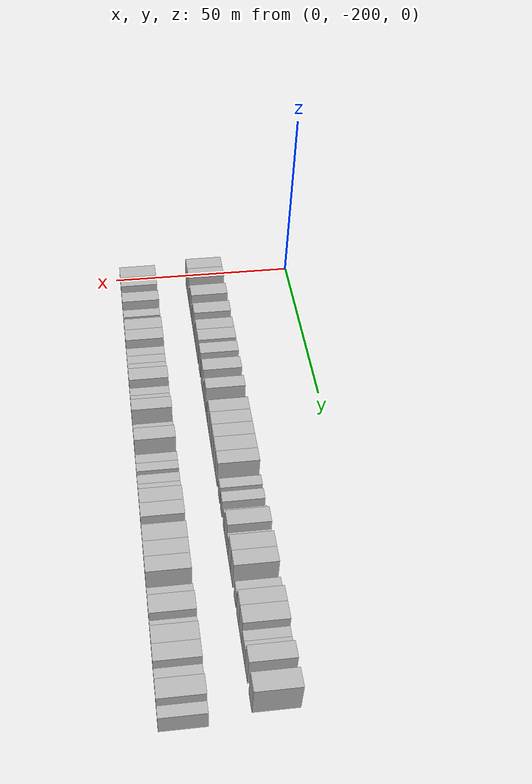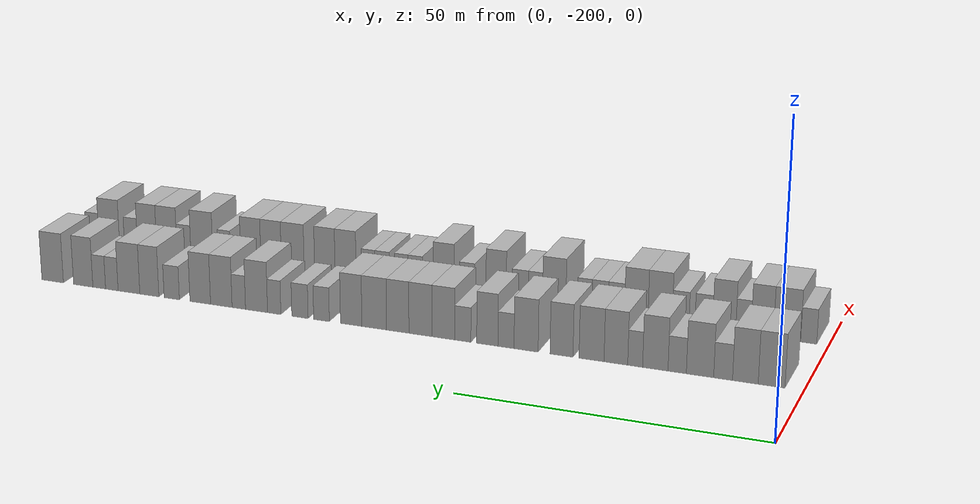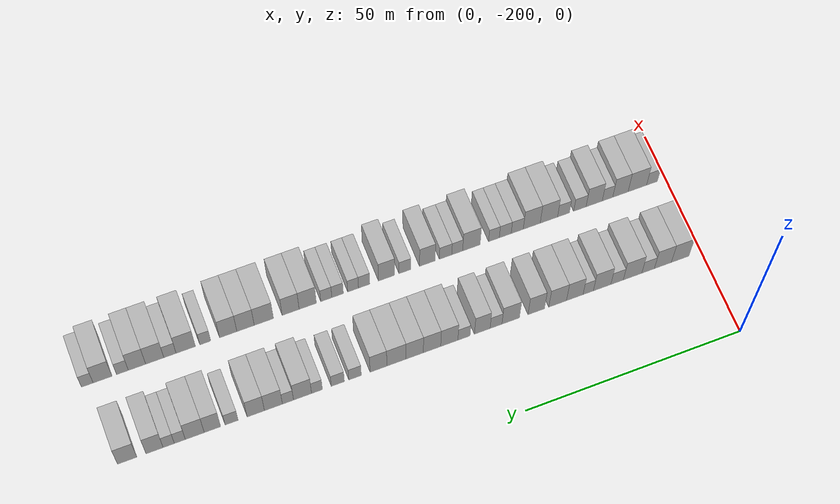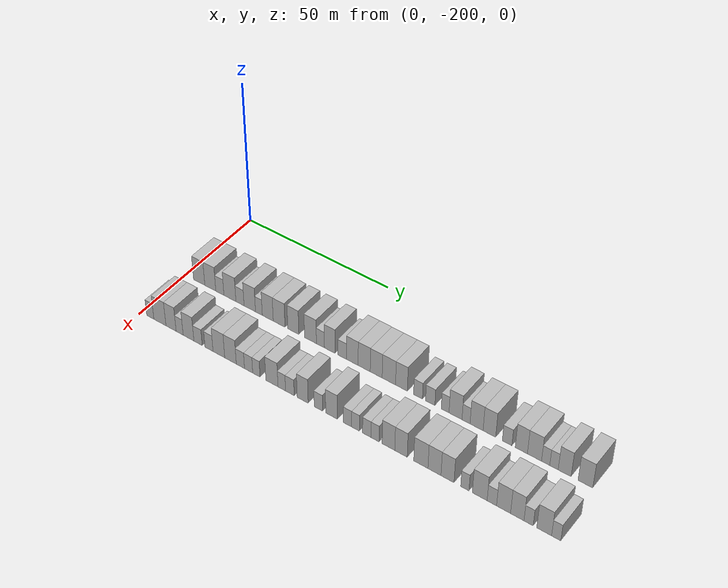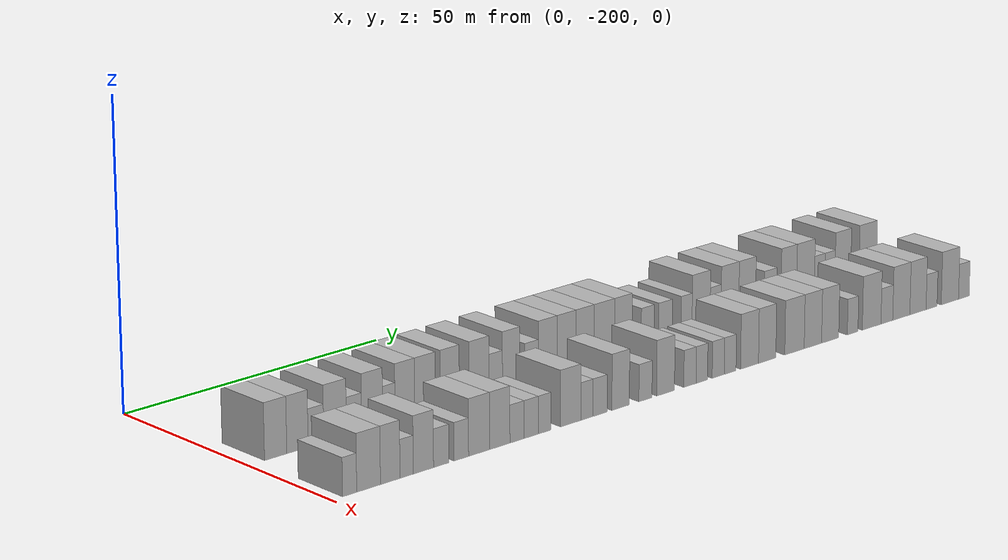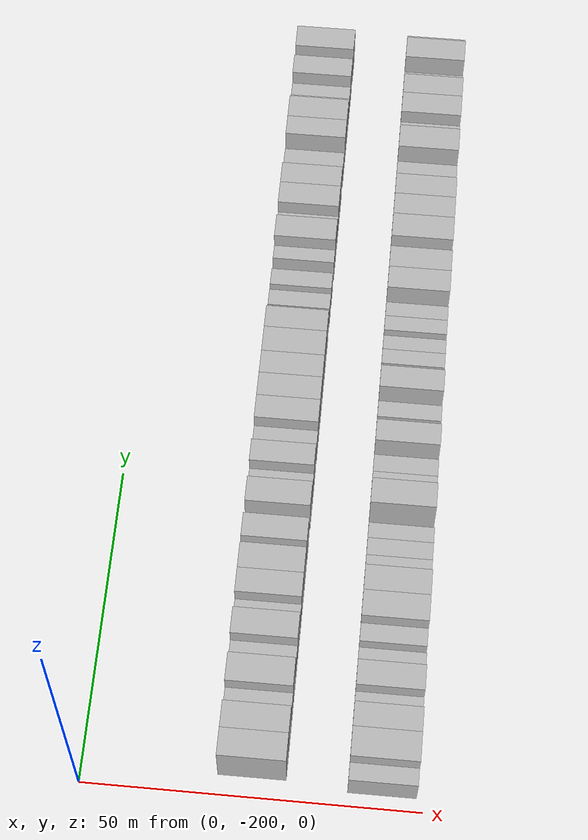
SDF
<sdf version="1.6">
 <world name="default">
  <model name="building_1">
   <static>1</static>
   <pose>25.0000 -194.8984 0 0.000000 0.000000 0.000000</pose>
   <link name="link">
    <pose>0 0 4.50 0 0 0</pose>
    <collision name="collision"><geometry><box><size>10.0000 4.2031 9.0000</size></box></geometry></collision>
    <visual name="visual">
     <cast_shadows>0</cast_shadows>
     <geometry><box><size>10.0000 4.2031 9.0000</size></box></geometry>
     <material>
      <script>
       <uri>model://HANNAS_wall/materials/scripts</uri>
       <uri>model://HANNAS_wall/materials/textures</uri>
       <name>vrc/HANNAS_wall</name>
      </script>
     </material>
    </visual>
   </link>
  </model>
  <model name="building_2">
   <static>1</static>
   <pose>25.0000 -190.7665 0 0.000000 0.000000 0.000000</pose>
   <link name="link">
    <pose>0 0 4.50 0 0 0</pose>
    <collision name="collision"><geometry><box><size>10.0000 4.0608 9.0000</size></box></geometry></collision>
    <visual name="visual">
     <cast_shadows>0</cast_shadows>
     <geometry><box><size>10.0000 4.0608 9.0000</size></box></geometry>
     <material>
      <script>
       <uri>model://HANNAS_wall/materials/scripts</uri>
       <uri>model://HANNAS_wall/materials/textures</uri>
       <name>vrc/HANNAS_wall</name>
      </script>
     </material>
    </visual>
   </link>
  </model>
  <model name="building_3">
   <static>1</static>
   <pose>25.0000 -187.2383 0 0.000000 0.000000 0.000000</pose>
   <link name="link">
    <pose>0 0 3.00 0 0 0</pose>
    <collision name="collision"><geometry><box><size>10.0000 2.9955 6.0000</size></box></geometry></collision>
    <visual name="visual">
     <cast_shadows>0</cast_shadows>
     <geometry><box><size>10.0000 2.9955 6.0000</size></box></geometry>
     <material>
      <script>
       <uri>model://HANNAS_wall/materials/scripts</uri>
       <uri>model://HANNAS_wall/materials/textures</uri>
       <name>vrc/HANNAS_wall</name>
      </script>
     </material>
    </visual>
   </link>
  </model>
  <model name="building_4">
   <static>1</static>
   <pose>25.0000 -183.5492 0 0.000000 0.000000 0.000000</pose>
   <link name="link">
    <pose>0 0 4.50 0 0 0</pose>
    <collision name="collision"><geometry><box><size>10.0000 4.3829 9.0000</size></box></geometry></collision>
    <visual name="visual">
     <cast_shadows>0</cast_shadows>
     <geometry><box><size>10.0000 4.3829 9.0000</size></box></geometry>
     <material>
      <script>
       <uri>model://HANNAS_wall/materials/scripts</uri>
       <uri>model://HANNAS_wall/materials/textures</uri>
       <name>vrc/HANNAS_wall</name>
      </script>
     </material>
    </visual>
   </link>
  </model>
  <model name="building_5">
   <static>1</static>
   <pose>25.0000 -179.8770 0 0.000000 0.000000 0.000000</pose>
   <link name="link">
    <pose>0 0 3.00 0 0 0</pose>
    <collision name="collision"><geometry><box><size>10.0000 2.9615 6.0000</size></box></geometry></collision>
    <visual name="visual">
     <cast_shadows>0</cast_shadows>
     <geometry><box><size>10.0000 2.9615 6.0000</size></box></geometry>
     <material>
      <script>
       <uri>model://HANNAS_wall/materials/scripts</uri>
       <uri>model://HANNAS_wall/materials/textures</uri>
       <name>vrc/HANNAS_wall</name>
      </script>
     </material>
    </visual>
   </link>
  </model>
  <model name="building_6">
   <static>1</static>
   <pose>25.0000 -176.3346 0 0.000000 0.000000 0.000000</pose>
   <link name="link">
    <pose>0 0 4.50 0 0 0</pose>
    <collision name="collision"><geometry><box><size>10.0000 4.1233 9.0000</size></box></geometry></collision>
    <visual name="visual">
     <cast_shadows>0</cast_shadows>
     <geometry><box><size>10.0000 4.1233 9.0000</size></box></geometry>
     <material>
      <script>
       <uri>model://HANNAS_wall/materials/scripts</uri>
       <uri>model://HANNAS_wall/materials/textures</uri>
       <name>vrc/HANNAS_wall</name>
      </script>
     </material>
    </visual>
   </link>
  </model>
  <model name="building_7">
   <static>1</static>
   <pose>25.0000 -173.0549 0 0.000000 0.000000 0.000000</pose>
   <link name="link">
    <pose>0 0 3.00 0 0 0</pose>
    <collision name="collision"><geometry><box><size>10.0000 2.4361 6.0000</size></box></geometry></collision>
    <visual name="visual">
     <cast_shadows>0</cast_shadows>
     <geometry><box><size>10.0000 2.4361 6.0000</size></box></geometry>
     <material>
      <script>
       <uri>model://HANNAS_wall/materials/scripts</uri>
       <uri>model://HANNAS_wall/materials/textures</uri>
       <name>vrc/HANNAS_wall</name>
      </script>
     </material>
    </visual>
   </link>
  </model>
  <model name="building_8">
   <static>1</static>
   <pose>25.0000 -169.8877 0 0.000000 0.000000 0.000000</pose>
   <link name="link">
    <pose>0 0 4.50 0 0 0</pose>
    <collision name="collision"><geometry><box><size>10.0000 3.8981 9.0000</size></box></geometry></collision>
    <visual name="visual">
     <cast_shadows>0</cast_shadows>
     <geometry><box><size>10.0000 3.8981 9.0000</size></box></geometry>
     <material>
      <script>
       <uri>model://HANNAS_wall/materials/scripts</uri>
       <uri>model://HANNAS_wall/materials/textures</uri>
       <name>vrc/HANNAS_wall</name>
      </script>
     </material>
    </visual>
   </link>
  </model>
  <model name="building_9">
   <static>1</static>
   <pose>25.0000 -165.8667 0 0.000000 0.000000 0.000000</pose>
   <link name="link">
    <pose>0 0 4.50 0 0 0</pose>
    <collision name="collision"><geometry><box><size>10.0000 4.1438 9.0000</size></box></geometry></collision>
    <visual name="visual">
     <cast_shadows>0</cast_shadows>
     <geometry><box><size>10.0000 4.1438 9.0000</size></box></geometry>
     <material>
      <script>
       <uri>model://HANNAS_wall/materials/scripts</uri>
       <uri>model://HANNAS_wall/materials/textures</uri>
       <name>vrc/HANNAS_wall</name>
      </script>
     </material>
    </visual>
   </link>
  </model>
  <model name="building_10">
   <static>1</static>
   <pose>25.0000 -160.8722 0 0.000000 0.000000 0.000000</pose>
   <link name="link">
    <pose>0 0 4.50 0 0 0</pose>
    <collision name="collision"><geometry><box><size>10.0000 3.8452 9.0000</size></box></geometry></collision>
    <visual name="visual">
     <cast_shadows>0</cast_shadows>
     <geometry><box><size>10.0000 3.8452 9.0000</size></box></geometry>
     <material>
      <script>
       <uri>model://HANNAS_wall/materials/scripts</uri>
       <uri>model://HANNAS_wall/materials/textures</uri>
       <name>vrc/HANNAS_wall</name>
      </script>
     </material>
    </visual>
   </link>
  </model>
  <model name="building_11">
   <static>1</static>
   <pose>25.0000 -154.9100 0 0.000000 0.000000 0.000000</pose>
   <link name="link">
    <pose>0 0 4.50 0 0 0</pose>
    <collision name="collision"><geometry><box><size>10.0000 4.0792 9.0000</size></box></geometry></collision>
    <visual name="visual">
     <cast_shadows>0</cast_shadows>
     <geometry><box><size>10.0000 4.0792 9.0000</size></box></geometry>
     <material>
      <script>
       <uri>model://HANNAS_wall/materials/scripts</uri>
       <uri>model://HANNAS_wall/materials/textures</uri>
       <name>vrc/HANNAS_wall</name>
      </script>
     </material>
    </visual>
   </link>
  </model>
  <model name="building_12">
   <static>1</static>
   <pose>25.0000 -151.4968 0 0.000000 0.000000 0.000000</pose>
   <link name="link">
    <pose>0 0 3.00 0 0 0</pose>
    <collision name="collision"><geometry><box><size>10.0000 2.7471 6.0000</size></box></geometry></collision>
    <visual name="visual">
     <cast_shadows>0</cast_shadows>
     <geometry><box><size>10.0000 2.7471 6.0000</size></box></geometry>
     <material>
      <script>
       <uri>model://HANNAS_wall/materials/scripts</uri>
       <uri>model://HANNAS_wall/materials/textures</uri>
       <name>vrc/HANNAS_wall</name>
      </script>
     </material>
    </visual>
   </link>
  </model>
  <model name="building_13">
   <static>1</static>
   <pose>25.0000 -148.3091 0 0.000000 0.000000 0.000000</pose>
   <link name="link">
    <pose>0 0 4.50 0 0 0</pose>
    <collision name="collision"><geometry><box><size>10.0000 3.6283 9.0000</size></box></geometry></collision>
    <visual name="visual">
     <cast_shadows>0</cast_shadows>
     <geometry><box><size>10.0000 3.6283 9.0000</size></box></geometry>
     <material>
      <script>
       <uri>model://HANNAS_wall/materials/scripts</uri>
       <uri>model://HANNAS_wall/materials/textures</uri>
       <name>vrc/HANNAS_wall</name>
      </script>
     </material>
    </visual>
   </link>
  </model>
  <model name="building_14">
   <static>1</static>
   <pose>25.0000 -144.0852 0 0.000000 0.000000 0.000000</pose>
   <link name="link">
    <pose>0 0 3.00 0 0 0</pose>
    <collision name="collision"><geometry><box><size>10.0000 2.8194 6.0000</size></box></geometry></collision>
    <visual name="visual">
     <cast_shadows>0</cast_shadows>
     <geometry><box><size>10.0000 2.8194 6.0000</size></box></geometry>
     <material>
      <script>
       <uri>model://HANNAS_wall/materials/scripts</uri>
       <uri>model://HANNAS_wall/materials/textures</uri>
       <name>vrc/HANNAS_wall</name>
      </script>
     </material>
    </visual>
   </link>
  </model>
  <model name="building_15">
   <static>1</static>
   <pose>25.0000 -140.6982 0 0.000000 0.000000 0.000000</pose>
   <link name="link">
    <pose>0 0 4.50 0 0 0</pose>
    <collision name="collision"><geometry><box><size>10.0000 3.9545 9.0000</size></box></geometry></collision>
    <visual name="visual">
     <cast_shadows>0</cast_shadows>
     <geometry><box><size>10.0000 3.9545 9.0000</size></box></geometry>
     <material>
      <script>
       <uri>model://HANNAS_wall/materials/scripts</uri>
       <uri>model://HANNAS_wall/materials/textures</uri>
       <name>vrc/HANNAS_wall</name>
      </script>
     </material>
    </visual>
   </link>
  </model>
  <model name="building_16">
   <static>1</static>
   <pose>25.0000 -136.7213 0 0.000000 0.000000 0.000000</pose>
   <link name="link">
    <pose>0 0 4.50 0 0 0</pose>
    <collision name="collision"><geometry><box><size>10.0000 3.9994 9.0000</size></box></geometry></collision>
    <visual name="visual">
     <cast_shadows>0</cast_shadows>
     <geometry><box><size>10.0000 3.9994 9.0000</size></box></geometry>
     <material>
      <script>
       <uri>model://HANNAS_wall/materials/scripts</uri>
       <uri>model://HANNAS_wall/materials/textures</uri>
       <name>vrc/HANNAS_wall</name>
      </script>
     </material>
    </visual>
   </link>
  </model>
  <model name="building_17">
   <static>1</static>
   <pose>25.0000 -132.7497 0 0.000000 0.000000 0.000000</pose>
   <link name="link">
    <pose>0 0 4.50 0 0 0</pose>
    <collision name="collision"><geometry><box><size>10.0000 3.9437 9.0000</size></box></geometry></collision>
    <visual name="visual">
     <cast_shadows>0</cast_shadows>
     <geometry><box><size>10.0000 3.9437 9.0000</size></box></geometry>
     <material>
      <script>
       <uri>model://HANNAS_wall/materials/scripts</uri>
       <uri>model://HANNAS_wall/materials/textures</uri>
       <name>vrc/HANNAS_wall</name>
      </script>
     </material>
    </visual>
   </link>
  </model>
  <model name="building_18">
   <static>1</static>
   <pose>25.0000 -128.5824 0 0.000000 0.000000 0.000000</pose>
   <link name="link">
    <pose>0 0 4.50 0 0 0</pose>
    <collision name="collision"><geometry><box><size>10.0000 4.3910 9.0000</size></box></geometry></collision>
    <visual name="visual">
     <cast_shadows>0</cast_shadows>
     <geometry><box><size>10.0000 4.3910 9.0000</size></box></geometry>
     <material>
      <script>
       <uri>model://HANNAS_wall/materials/scripts</uri>
       <uri>model://HANNAS_wall/materials/textures</uri>
       <name>vrc/HANNAS_wall</name>
      </script>
     </material>
    </visual>
   </link>
  </model>
  <model name="building_19">
   <static>1</static>
   <pose>25.0000 -124.4751 0 0.000000 0.000000 0.000000</pose>
   <link name="link">
    <pose>0 0 4.50 0 0 0</pose>
    <collision name="collision"><geometry><box><size>10.0000 3.8236 9.0000</size></box></geometry></collision>
    <visual name="visual">
     <cast_shadows>0</cast_shadows>
     <geometry><box><size>10.0000 3.8236 9.0000</size></box></geometry>
     <material>
      <script>
       <uri>model://HANNAS_wall/materials/scripts</uri>
       <uri>model://HANNAS_wall/materials/textures</uri>
       <name>vrc/HANNAS_wall</name>
      </script>
     </material>
    </visual>
   </link>
  </model>
  <model name="building_20">
   <static>1</static>
   <pose>25.0000 -119.1442 0 0.000000 0.000000 0.000000</pose>
   <link name="link">
    <pose>0 0 3.00 0 0 0</pose>
    <collision name="collision"><geometry><box><size>10.0000 2.8384 6.0000</size></box></geometry></collision>
    <visual name="visual">
     <cast_shadows>0</cast_shadows>
     <geometry><box><size>10.0000 2.8384 6.0000</size></box></geometry>
     <material>
      <script>
       <uri>model://HANNAS_wall/materials/scripts</uri>
       <uri>model://HANNAS_wall/materials/textures</uri>
       <name>vrc/HANNAS_wall</name>
      </script>
     </material>
    </visual>
   </link>
  </model>
  <model name="building_21">
   <static>1</static>
   <pose>25.0000 -115.2415 0 0.000000 0.000000 0.000000</pose>
   <link name="link">
    <pose>0 0 3.00 0 0 0</pose>
    <collision name="collision"><geometry><box><size>10.0000 2.9668 6.0000</size></box></geometry></collision>
    <visual name="visual">
     <cast_shadows>0</cast_shadows>
     <geometry><box><size>10.0000 2.9668 6.0000</size></box></geometry>
     <material>
      <script>
       <uri>model://HANNAS_wall/materials/scripts</uri>
       <uri>model://HANNAS_wall/materials/textures</uri>
       <name>vrc/HANNAS_wall</name>
      </script>
     </material>
    </visual>
   </link>
  </model>
  <model name="building_22">
   <static>1</static>
   <pose>25.0000 -110.5352 0 0.000000 0.000000 0.000000</pose>
   <link name="link">
    <pose>0 0 3.00 0 0 0</pose>
    <collision name="collision"><geometry><box><size>10.0000 2.4459 6.0000</size></box></geometry></collision>
    <visual name="visual">
     <cast_shadows>0</cast_shadows>
     <geometry><box><size>10.0000 2.4459 6.0000</size></box></geometry>
     <material>
      <script>
       <uri>model://HANNAS_wall/materials/scripts</uri>
       <uri>model://HANNAS_wall/materials/textures</uri>
       <name>vrc/HANNAS_wall</name>
      </script>
     </material>
    </visual>
   </link>
  </model>
  <model name="building_23">
   <static>1</static>
   <pose>25.0000 -107.2818 0 0.000000 0.000000 0.000000</pose>
   <link name="link">
    <pose>0 0 4.50 0 0 0</pose>
    <collision name="collision"><geometry><box><size>10.0000 4.0610 9.0000</size></box></geometry></collision>
    <visual name="visual">
     <cast_shadows>0</cast_shadows>
     <geometry><box><size>10.0000 4.0610 9.0000</size></box></geometry>
     <material>
      <script>
       <uri>model://HANNAS_wall/materials/scripts</uri>
       <uri>model://HANNAS_wall/materials/textures</uri>
       <name>vrc/HANNAS_wall</name>
      </script>
     </material>
    </visual>
   </link>
  </model>
  <model name="building_24">
   <static>1</static>
   <pose>25.0000 -104.0030 0 0.000000 0.000000 0.000000</pose>
   <link name="link">
    <pose>0 0 3.00 0 0 0</pose>
    <collision name="collision"><geometry><box><size>10.0000 2.4966 6.0000</size></box></geometry></collision>
    <visual name="visual">
     <cast_shadows>0</cast_shadows>
     <geometry><box><size>10.0000 2.4966 6.0000</size></box></geometry>
     <material>
      <script>
       <uri>model://HANNAS_wall/materials/scripts</uri>
       <uri>model://HANNAS_wall/materials/textures</uri>
       <name>vrc/HANNAS_wall</name>
      </script>
     </material>
    </visual>
   </link>
  </model>
  <model name="building_25">
   <static>1</static>
   <pose>25.0000 -100.7431 0 0.000000 0.000000 0.000000</pose>
   <link name="link">
    <pose>0 0 4.50 0 0 0</pose>
    <collision name="collision"><geometry><box><size>10.0000 4.0231 9.0000</size></box></geometry></collision>
    <visual name="visual">
     <cast_shadows>0</cast_shadows>
     <geometry><box><size>10.0000 4.0231 9.0000</size></box></geometry>
     <material>
      <script>
       <uri>model://HANNAS_wall/materials/scripts</uri>
       <uri>model://HANNAS_wall/materials/textures</uri>
       <name>vrc/HANNAS_wall</name>
      </script>
     </material>
    </visual>
   </link>
  </model>
  <model name="building_26">
   <static>1</static>
   <pose>25.0000 -96.7978 0 0.000000 0.000000 0.000000</pose>
   <link name="link">
    <pose>0 0 4.50 0 0 0</pose>
    <collision name="collision"><geometry><box><size>10.0000 3.8676 9.0000</size></box></geometry></collision>
    <visual name="visual">
     <cast_shadows>0</cast_shadows>
     <geometry><box><size>10.0000 3.8676 9.0000</size></box></geometry>
     <material>
      <script>
       <uri>model://HANNAS_wall/materials/scripts</uri>
       <uri>model://HANNAS_wall/materials/textures</uri>
       <name>vrc/HANNAS_wall</name>
      </script>
     </material>
    </visual>
   </link>
  </model>
  <model name="building_27">
   <static>1</static>
   <pose>25.0000 -91.4139 0 0.000000 0.000000 0.000000</pose>
   <link name="link">
    <pose>0 0 3.00 0 0 0</pose>
    <collision name="collision"><geometry><box><size>10.0000 2.9003 6.0000</size></box></geometry></collision>
    <visual name="visual">
     <cast_shadows>0</cast_shadows>
     <geometry><box><size>10.0000 2.9003 6.0000</size></box></geometry>
     <material>
      <script>
       <uri>model://HANNAS_wall/materials/scripts</uri>
       <uri>model://HANNAS_wall/materials/textures</uri>
       <name>vrc/HANNAS_wall</name>
      </script>
     </material>
    </visual>
   </link>
  </model>
  <model name="building_28">
   <static>1</static>
   <pose>25.0000 -87.1407 0 0.000000 0.000000 0.000000</pose>
   <link name="link">
    <pose>0 0 4.50 0 0 0</pose>
    <collision name="collision"><geometry><box><size>10.0000 3.6459 9.0000</size></box></geometry></collision>
    <visual name="visual">
     <cast_shadows>0</cast_shadows>
     <geometry><box><size>10.0000 3.6459 9.0000</size></box></geometry>
     <material>
      <script>
       <uri>model://HANNAS_wall/materials/scripts</uri>
       <uri>model://HANNAS_wall/materials/textures</uri>
       <name>vrc/HANNAS_wall</name>
      </script>
     </material>
    </visual>
   </link>
  </model>
  <model name="building_29">
   <static>1</static>
   <pose>25.0000 -83.2249 0 0.000000 0.000000 0.000000</pose>
   <link name="link">
    <pose>0 0 4.50 0 0 0</pose>
    <collision name="collision"><geometry><box><size>10.0000 4.1856 9.0000</size></box></geometry></collision>
    <visual name="visual">
     <cast_shadows>0</cast_shadows>
     <geometry><box><size>10.0000 4.1856 9.0000</size></box></geometry>
     <material>
      <script>
       <uri>model://HANNAS_wall/materials/scripts</uri>
       <uri>model://HANNAS_wall/materials/textures</uri>
       <name>vrc/HANNAS_wall</name>
      </script>
     </material>
    </visual>
   </link>
  </model>
  <model name="building_30">
   <static>1</static>
   <pose>25.0000 -79.9210 0 0.000000 0.000000 0.000000</pose>
   <link name="link">
    <pose>0 0 3.00 0 0 0</pose>
    <collision name="collision"><geometry><box><size>10.0000 2.4223 6.0000</size></box></geometry></collision>
    <visual name="visual">
     <cast_shadows>0</cast_shadows>
     <geometry><box><size>10.0000 2.4223 6.0000</size></box></geometry>
     <material>
      <script>
       <uri>model://HANNAS_wall/materials/scripts</uri>
       <uri>model://HANNAS_wall/materials/textures</uri>
       <name>vrc/HANNAS_wall</name>
      </script>
     </material>
    </visual>
   </link>
  </model>
  <model name="building_31">
   <static>1</static>
   <pose>25.0000 -77.4762 0 0.000000 0.000000 0.000000</pose>
   <link name="link">
    <pose>0 0 3.00 0 0 0</pose>
    <collision name="collision"><geometry><box><size>10.0000 2.4674 6.0000</size></box></geometry></collision>
    <visual name="visual">
     <cast_shadows>0</cast_shadows>
     <geometry><box><size>10.0000 2.4674 6.0000</size></box></geometry>
     <material>
      <script>
       <uri>model://HANNAS_wall/materials/scripts</uri>
       <uri>model://HANNAS_wall/materials/textures</uri>
       <name>vrc/HANNAS_wall</name>
      </script>
     </material>
    </visual>
   </link>
  </model>
  <model name="building_32">
   <static>1</static>
   <pose>25.0000 -74.3567 0 0.000000 0.000000 0.000000</pose>
   <link name="link">
    <pose>0 0 4.50 0 0 0</pose>
    <collision name="collision"><geometry><box><size>10.0000 3.7716 9.0000</size></box></geometry></collision>
    <visual name="visual">
     <cast_shadows>0</cast_shadows>
     <geometry><box><size>10.0000 3.7716 9.0000</size></box></geometry>
     <material>
      <script>
       <uri>model://HANNAS_wall/materials/scripts</uri>
       <uri>model://HANNAS_wall/materials/textures</uri>
       <name>vrc/HANNAS_wall</name>
      </script>
     </material>
    </visual>
   </link>
  </model>
  <model name="building_33">
   <static>1</static>
   <pose>25.0000 -68.3508 0 0.000000 0.000000 0.000000</pose>
   <link name="link">
    <pose>0 0 4.50 0 0 0</pose>
    <collision name="collision"><geometry><box><size>10.0000 4.2402 9.0000</size></box></geometry></collision>
    <visual name="visual">
     <cast_shadows>0</cast_shadows>
     <geometry><box><size>10.0000 4.2402 9.0000</size></box></geometry>
     <material>
      <script>
       <uri>model://HANNAS_wall/materials/scripts</uri>
       <uri>model://HANNAS_wall/materials/textures</uri>
       <name>vrc/HANNAS_wall</name>
      </script>
     </material>
    </visual>
   </link>
  </model>
  <model name="building_103">
   <static>1</static>
   <pose>44.0000 -196.6803 0 0.000000 0.000000 0.000000</pose>
   <link name="link">
    <pose>0 0 3.00 0 0 0</pose>
    <collision name="collision"><geometry><box><size>10.0000 2.6393 6.0000</size></box></geometry></collision>
    <visual name="visual">
     <cast_shadows>0</cast_shadows>
     <geometry><box><size>10.0000 2.6393 6.0000</size></box></geometry>
     <material>
      <script>
       <uri>model://HANNAS_wall/materials/scripts</uri>
       <uri>model://HANNAS_wall/materials/textures</uri>
       <name>vrc/HANNAS_wall</name>
      </script>
     </material>
    </visual>
   </link>
  </model>
  <model name="building_104">
   <static>1</static>
   <pose>44.0000 -193.1271 0 0.000000 0.000000 0.000000</pose>
   <link name="link">
    <pose>0 0 4.50 0 0 0</pose>
    <collision name="collision"><geometry><box><size>10.0000 4.4672 9.0000</size></box></geometry></collision>
    <visual name="visual">
     <cast_shadows>0</cast_shadows>
     <geometry><box><size>10.0000 4.4672 9.0000</size></box></geometry>
     <material>
      <script>
       <uri>model://HANNAS_wall/materials/scripts</uri>
       <uri>model://HANNAS_wall/materials/textures</uri>
       <name>vrc/HANNAS_wall</name>
      </script>
     </material>
    </visual>
   </link>
  </model>
  <model name="building_105">
   <static>1</static>
   <pose>44.0000 -189.0317 0 0.000000 0.000000 0.000000</pose>
   <link name="link">
    <pose>0 0 4.50 0 0 0</pose>
    <collision name="collision"><geometry><box><size>10.0000 3.7235 9.0000</size></box></geometry></collision>
    <visual name="visual">
     <cast_shadows>0</cast_shadows>
     <geometry><box><size>10.0000 3.7235 9.0000</size></box></geometry>
     <material>
      <script>
       <uri>model://HANNAS_wall/materials/scripts</uri>
       <uri>model://HANNAS_wall/materials/textures</uri>
       <name>vrc/HANNAS_wall</name>
      </script>
     </material>
    </visual>
   </link>
  </model>
  <model name="building_106">
   <static>1</static>
   <pose>44.0000 -185.8994 0 0.000000 0.000000 0.000000</pose>
   <link name="link">
    <pose>0 0 3.00 0 0 0</pose>
    <collision name="collision"><geometry><box><size>10.0000 2.5412 6.0000</size></box></geometry></collision>
    <visual name="visual">
     <cast_shadows>0</cast_shadows>
     <geometry><box><size>10.0000 2.5412 6.0000</size></box></geometry>
     <material>
      <script>
       <uri>model://HANNAS_wall/materials/scripts</uri>
       <uri>model://HANNAS_wall/materials/textures</uri>
       <name>vrc/HANNAS_wall</name>
      </script>
     </material>
    </visual>
   </link>
  </model>
  <model name="building_107">
   <static>1</static>
   <pose>44.0000 -182.6875 0 0.000000 0.000000 0.000000</pose>
   <link name="link">
    <pose>0 0 4.50 0 0 0</pose>
    <collision name="collision"><geometry><box><size>10.0000 3.8825 9.0000</size></box></geometry></collision>
    <visual name="visual">
     <cast_shadows>0</cast_shadows>
     <geometry><box><size>10.0000 3.8825 9.0000</size></box></geometry>
     <material>
      <script>
       <uri>model://HANNAS_wall/materials/scripts</uri>
       <uri>model://HANNAS_wall/materials/textures</uri>
       <name>vrc/HANNAS_wall</name>
      </script>
     </material>
    </visual>
   </link>
  </model>
  <model name="building_108">
   <static>1</static>
   <pose>44.0000 -179.2599 0 0.000000 0.000000 0.000000</pose>
   <link name="link">
    <pose>0 0 3.00 0 0 0</pose>
    <collision name="collision"><geometry><box><size>10.0000 2.9727 6.0000</size></box></geometry></collision>
    <visual name="visual">
     <cast_shadows>0</cast_shadows>
     <geometry><box><size>10.0000 2.9727 6.0000</size></box></geometry>
     <material>
      <script>
       <uri>model://HANNAS_wall/materials/scripts</uri>
       <uri>model://HANNAS_wall/materials/textures</uri>
       <name>vrc/HANNAS_wall</name>
      </script>
     </material>
    </visual>
   </link>
  </model>
  <model name="building_109">
   <static>1</static>
   <pose>44.0000 -175.3465 0 0.000000 0.000000 0.000000</pose>
   <link name="link">
    <pose>0 0 3.00 0 0 0</pose>
    <collision name="collision"><geometry><box><size>10.0000 2.8540 6.0000</size></box></geometry></collision>
    <visual name="visual">
     <cast_shadows>0</cast_shadows>
     <geometry><box><size>10.0000 2.8540 6.0000</size></box></geometry>
     <material>
      <script>
       <uri>model://HANNAS_wall/materials/scripts</uri>
       <uri>model://HANNAS_wall/materials/textures</uri>
       <name>vrc/HANNAS_wall</name>
      </script>
     </material>
    </visual>
   </link>
  </model>
  <model name="building_110">
   <static>1</static>
   <pose>44.0000 -171.8518 0 0.000000 0.000000 0.000000</pose>
   <link name="link">
    <pose>0 0 4.50 0 0 0</pose>
    <collision name="collision"><geometry><box><size>10.0000 4.1355 9.0000</size></box></geometry></collision>
    <visual name="visual">
     <cast_shadows>0</cast_shadows>
     <geometry><box><size>10.0000 4.1355 9.0000</size></box></geometry>
     <material>
      <script>
       <uri>model://HANNAS_wall/materials/scripts</uri>
       <uri>model://HANNAS_wall/materials/textures</uri>
       <name>vrc/HANNAS_wall</name>
      </script>
     </material>
    </visual>
   </link>
  </model>
  <model name="building_111">
   <static>1</static>
   <pose>44.0000 -167.7611 0 0.000000 0.000000 0.000000</pose>
   <link name="link">
    <pose>0 0 4.50 0 0 0</pose>
    <collision name="collision"><geometry><box><size>10.0000 4.0460 9.0000</size></box></geometry></collision>
    <visual name="visual">
     <cast_shadows>0</cast_shadows>
     <geometry><box><size>10.0000 4.0460 9.0000</size></box></geometry>
     <material>
      <script>
       <uri>model://HANNAS_wall/materials/scripts</uri>
       <uri>model://HANNAS_wall/materials/textures</uri>
       <name>vrc/HANNAS_wall</name>
      </script>
     </material>
    </visual>
   </link>
  </model>
  <model name="building_112">
   <static>1</static>
   <pose>44.0000 -164.3086 0 0.000000 0.000000 0.000000</pose>
   <link name="link">
    <pose>0 0 3.00 0 0 0</pose>
    <collision name="collision"><geometry><box><size>10.0000 2.8589 6.0000</size></box></geometry></collision>
    <visual name="visual">
     <cast_shadows>0</cast_shadows>
     <geometry><box><size>10.0000 2.8589 6.0000</size></box></geometry>
     <material>
      <script>
       <uri>model://HANNAS_wall/materials/scripts</uri>
       <uri>model://HANNAS_wall/materials/textures</uri>
       <name>vrc/HANNAS_wall</name>
      </script>
     </material>
    </visual>
   </link>
  </model>
  <model name="building_113">
   <static>1</static>
   <pose>44.0000 -161.4639 0 0.000000 0.000000 0.000000</pose>
   <link name="link">
    <pose>0 0 3.00 0 0 0</pose>
    <collision name="collision"><geometry><box><size>10.0000 2.8305 6.0000</size></box></geometry></collision>
    <visual name="visual">
     <cast_shadows>0</cast_shadows>
     <geometry><box><size>10.0000 2.8305 6.0000</size></box></geometry>
     <material>
      <script>
       <uri>model://HANNAS_wall/materials/scripts</uri>
       <uri>model://HANNAS_wall/materials/textures</uri>
       <name>vrc/HANNAS_wall</name>
      </script>
     </material>
    </visual>
   </link>
  </model>
  <model name="building_114">
   <static>1</static>
   <pose>44.0000 -158.7855 0 0.000000 0.000000 0.000000</pose>
   <link name="link">
    <pose>0 0 3.00 0 0 0</pose>
    <collision name="collision"><geometry><box><size>10.0000 2.5265 6.0000</size></box></geometry></collision>
    <visual name="visual">
     <cast_shadows>0</cast_shadows>
     <geometry><box><size>10.0000 2.5265 6.0000</size></box></geometry>
     <material>
      <script>
       <uri>model://HANNAS_wall/materials/scripts</uri>
       <uri>model://HANNAS_wall/materials/textures</uri>
       <name>vrc/HANNAS_wall</name>
      </script>
     </material>
    </visual>
   </link>
  </model>
  <model name="building_115">
   <static>1</static>
   <pose>44.0000 -153.4617 0 0.000000 0.000000 0.000000</pose>
   <link name="link">
    <pose>0 0 4.50 0 0 0</pose>
    <collision name="collision"><geometry><box><size>10.0000 4.1211 9.0000</size></box></geometry></collision>
    <visual name="visual">
     <cast_shadows>0</cast_shadows>
     <geometry><box><size>10.0000 4.1211 9.0000</size></box></geometry>
     <material>
      <script>
       <uri>model://HANNAS_wall/materials/scripts</uri>
       <uri>model://HANNAS_wall/materials/textures</uri>
       <name>vrc/HANNAS_wall</name>
      </script>
     </material>
    </visual>
   </link>
  </model>
  <model name="building_116">
   <static>1</static>
   <pose>44.0000 -150.1238 0 0.000000 0.000000 0.000000</pose>
   <link name="link">
    <pose>0 0 3.00 0 0 0</pose>
    <collision name="collision"><geometry><box><size>10.0000 2.5547 6.0000</size></box></geometry></collision>
    <visual name="visual">
     <cast_shadows>0</cast_shadows>
     <geometry><box><size>10.0000 2.5547 6.0000</size></box></geometry>
     <material>
      <script>
       <uri>model://HANNAS_wall/materials/scripts</uri>
       <uri>model://HANNAS_wall/materials/textures</uri>
       <name>vrc/HANNAS_wall</name>
      </script>
     </material>
    </visual>
   </link>
  </model>
  <model name="building_117">
   <static>1</static>
   <pose>44.0000 -147.3947 0 0.000000 0.000000 0.000000</pose>
   <link name="link">
    <pose>0 0 3.00 0 0 0</pose>
    <collision name="collision"><geometry><box><size>10.0000 2.9034 6.0000</size></box></geometry></collision>
    <visual name="visual">
     <cast_shadows>0</cast_shadows>
     <geometry><box><size>10.0000 2.9034 6.0000</size></box></geometry>
     <material>
      <script>
       <uri>model://HANNAS_wall/materials/scripts</uri>
       <uri>model://HANNAS_wall/materials/textures</uri>
       <name>vrc/HANNAS_wall</name>
      </script>
     </material>
    </visual>
   </link>
  </model>
  <model name="building_118">
   <static>1</static>
   <pose>44.0000 -143.1155 0 0.000000 0.000000 0.000000</pose>
   <link name="link">
    <pose>0 0 4.50 0 0 0</pose>
    <collision name="collision"><geometry><box><size>10.0000 3.6550 9.0000</size></box></geometry></collision>
    <visual name="visual">
     <cast_shadows>0</cast_shadows>
     <geometry><box><size>10.0000 3.6550 9.0000</size></box></geometry>
     <material>
      <script>
       <uri>model://HANNAS_wall/materials/scripts</uri>
       <uri>model://HANNAS_wall/materials/textures</uri>
       <name>vrc/HANNAS_wall</name>
      </script>
     </material>
    </visual>
   </link>
  </model>
  <model name="building_119">
   <static>1</static>
   <pose>44.0000 -137.9006 0 0.000000 0.000000 0.000000</pose>
   <link name="link">
    <pose>0 0 3.00 0 0 0</pose>
    <collision name="collision"><geometry><box><size>10.0000 2.7749 6.0000</size></box></geometry></collision>
    <visual name="visual">
     <cast_shadows>0</cast_shadows>
     <geometry><box><size>10.0000 2.7749 6.0000</size></box></geometry>
     <material>
      <script>
       <uri>model://HANNAS_wall/materials/scripts</uri>
       <uri>model://HANNAS_wall/materials/textures</uri>
       <name>vrc/HANNAS_wall</name>
      </script>
     </material>
    </visual>
   </link>
  </model>
  <model name="building_120">
   <static>1</static>
   <pose>44.0000 -133.6178 0 0.000000 0.000000 0.000000</pose>
   <link name="link">
    <pose>0 0 4.50 0 0 0</pose>
    <collision name="collision"><geometry><box><size>10.0000 3.7907 9.0000</size></box></geometry></collision>
    <visual name="visual">
     <cast_shadows>0</cast_shadows>
     <geometry><box><size>10.0000 3.7907 9.0000</size></box></geometry>
     <material>
      <script>
       <uri>model://HANNAS_wall/materials/scripts</uri>
       <uri>model://HANNAS_wall/materials/textures</uri>
       <name>vrc/HANNAS_wall</name>
      </script>
     </material>
    </visual>
   </link>
  </model>
  <model name="building_121">
   <static>1</static>
   <pose>44.0000 -128.4097 0 0.000000 0.000000 0.000000</pose>
   <link name="link">
    <pose>0 0 3.00 0 0 0</pose>
    <collision name="collision"><geometry><box><size>10.0000 2.6254 6.0000</size></box></geometry></collision>
    <visual name="visual">
     <cast_shadows>0</cast_shadows>
     <geometry><box><size>10.0000 2.6254 6.0000</size></box></geometry>
     <material>
      <script>
       <uri>model://HANNAS_wall/materials/scripts</uri>
       <uri>model://HANNAS_wall/materials/textures</uri>
       <name>vrc/HANNAS_wall</name>
      </script>
     </material>
    </visual>
   </link>
  </model>
  <model name="building_122">
   <static>1</static>
   <pose>44.0000 -125.8461 0 0.000000 0.000000 0.000000</pose>
   <link name="link">
    <pose>0 0 3.00 0 0 0</pose>
    <collision name="collision"><geometry><box><size>10.0000 2.5018 6.0000</size></box></geometry></collision>
    <visual name="visual">
     <cast_shadows>0</cast_shadows>
     <geometry><box><size>10.0000 2.5018 6.0000</size></box></geometry>
     <material>
      <script>
       <uri>model://HANNAS_wall/materials/scripts</uri>
       <uri>model://HANNAS_wall/materials/textures</uri>
       <name>vrc/HANNAS_wall</name>
      </script>
     </material>
    </visual>
   </link>
  </model>
  <model name="building_123">
   <static>1</static>
   <pose>44.0000 -122.2660 0 0.000000 0.000000 0.000000</pose>
   <link name="link">
    <pose>0 0 3.00 0 0 0</pose>
    <collision name="collision"><geometry><box><size>10.0000 2.6583 6.0000</size></box></geometry></collision>
    <visual name="visual">
     <cast_shadows>0</cast_shadows>
     <geometry><box><size>10.0000 2.6583 6.0000</size></box></geometry>
     <material>
      <script>
       <uri>model://HANNAS_wall/materials/scripts</uri>
       <uri>model://HANNAS_wall/materials/textures</uri>
       <name>vrc/HANNAS_wall</name>
      </script>
     </material>
    </visual>
   </link>
  </model>
  <model name="building_124">
   <static>1</static>
   <pose>44.0000 -119.6576 0 0.000000 0.000000 0.000000</pose>
   <link name="link">
    <pose>0 0 3.00 0 0 0</pose>
    <collision name="collision"><geometry><box><size>10.0000 2.5585 6.0000</size></box></geometry></collision>
    <visual name="visual">
     <cast_shadows>0</cast_shadows>
     <geometry><box><size>10.0000 2.5585 6.0000</size></box></geometry>
     <material>
      <script>
       <uri>model://HANNAS_wall/materials/scripts</uri>
       <uri>model://HANNAS_wall/materials/textures</uri>
       <name>vrc/HANNAS_wall</name>
      </script>
     </material>
    </visual>
   </link>
  </model>
  <model name="building_125">
   <static>1</static>
   <pose>44.0000 -115.3956 0 0.000000 0.000000 0.000000</pose>
   <link name="link">
    <pose>0 0 4.50 0 0 0</pose>
    <collision name="collision"><geometry><box><size>10.0000 3.9655 9.0000</size></box></geometry></collision>
    <visual name="visual">
     <cast_shadows>0</cast_shadows>
     <geometry><box><size>10.0000 3.9655 9.0000</size></box></geometry>
     <material>
      <script>
       <uri>model://HANNAS_wall/materials/scripts</uri>
       <uri>model://HANNAS_wall/materials/textures</uri>
       <name>vrc/HANNAS_wall</name>
      </script>
     </material>
    </visual>
   </link>
  </model>
  <model name="building_126">
   <static>1</static>
   <pose>44.0000 -111.4756 0 0.000000 0.000000 0.000000</pose>
   <link name="link">
    <pose>0 0 4.50 0 0 0</pose>
    <collision name="collision"><geometry><box><size>10.0000 3.8746 9.0000</size></box></geometry></collision>
    <visual name="visual">
     <cast_shadows>0</cast_shadows>
     <geometry><box><size>10.0000 3.8746 9.0000</size></box></geometry>
     <material>
      <script>
       <uri>model://HANNAS_wall/materials/scripts</uri>
       <uri>model://HANNAS_wall/materials/textures</uri>
       <name>vrc/HANNAS_wall</name>
      </script>
     </material>
    </visual>
   </link>
  </model>
  <model name="building_127">
   <static>1</static>
   <pose>44.0000 -105.3510 0 0.000000 0.000000 0.000000</pose>
   <link name="link">
    <pose>0 0 4.50 0 0 0</pose>
    <collision name="collision"><geometry><box><size>10.0000 4.3746 9.0000</size></box></geometry></collision>
    <visual name="visual">
     <cast_shadows>0</cast_shadows>
     <geometry><box><size>10.0000 4.3746 9.0000</size></box></geometry>
     <material>
      <script>
       <uri>model://HANNAS_wall/materials/scripts</uri>
       <uri>model://HANNAS_wall/materials/textures</uri>
       <name>vrc/HANNAS_wall</name>
      </script>
     </material>
    </visual>
   </link>
  </model>
  <model name="building_128">
   <static>1</static>
   <pose>44.0000 -101.1854 0 0.000000 0.000000 0.000000</pose>
   <link name="link">
    <pose>0 0 4.50 0 0 0</pose>
    <collision name="collision"><geometry><box><size>10.0000 3.9566 9.0000</size></box></geometry></collision>
    <visual name="visual">
     <cast_shadows>0</cast_shadows>
     <geometry><box><size>10.0000 3.9566 9.0000</size></box></geometry>
     <material>
      <script>
       <uri>model://HANNAS_wall/materials/scripts</uri>
       <uri>model://HANNAS_wall/materials/textures</uri>
       <name>vrc/HANNAS_wall</name>
      </script>
     </material>
    </visual>
   </link>
  </model>
  <model name="building_129">
   <static>1</static>
   <pose>44.0000 -97.2466 0 0.000000 0.000000 0.000000</pose>
   <link name="link">
    <pose>0 0 4.50 0 0 0</pose>
    <collision name="collision"><geometry><box><size>10.0000 3.9209 9.0000</size></box></geometry></collision>
    <visual name="visual">
     <cast_shadows>0</cast_shadows>
     <geometry><box><size>10.0000 3.9209 9.0000</size></box></geometry>
     <material>
      <script>
       <uri>model://HANNAS_wall/materials/scripts</uri>
       <uri>model://HANNAS_wall/materials/textures</uri>
       <name>vrc/HANNAS_wall</name>
      </script>
     </material>
    </visual>
   </link>
  </model>
  <model name="building_130">
   <static>1</static>
   <pose>44.0000 -92.0510 0 0.000000 0.000000 0.000000</pose>
   <link name="link">
    <pose>0 0 3.00 0 0 0</pose>
    <collision name="collision"><geometry><box><size>10.0000 2.4704 6.0000</size></box></geometry></collision>
    <visual name="visual">
     <cast_shadows>0</cast_shadows>
     <geometry><box><size>10.0000 2.4704 6.0000</size></box></geometry>
     <material>
      <script>
       <uri>model://HANNAS_wall/materials/scripts</uri>
       <uri>model://HANNAS_wall/materials/textures</uri>
       <name>vrc/HANNAS_wall</name>
      </script>
     </material>
    </visual>
   </link>
  </model>
  <model name="building_131">
   <static>1</static>
   <pose>44.0000 -87.6380 0 0.000000 0.000000 0.000000</pose>
   <link name="link">
    <pose>0 0 4.50 0 0 0</pose>
    <collision name="collision"><geometry><box><size>10.0000 4.3557 9.0000</size></box></geometry></collision>
    <visual name="visual">
     <cast_shadows>0</cast_shadows>
     <geometry><box><size>10.0000 4.3557 9.0000</size></box></geometry>
     <material>
      <script>
       <uri>model://HANNAS_wall/materials/scripts</uri>
       <uri>model://HANNAS_wall/materials/textures</uri>
       <name>vrc/HANNAS_wall</name>
      </script>
     </material>
    </visual>
   </link>
  </model>
  <model name="building_132">
   <static>1</static>
   <pose>44.0000 -84.0771 0 0.000000 0.000000 0.000000</pose>
   <link name="link">
    <pose>0 0 3.00 0 0 0</pose>
    <collision name="collision"><geometry><box><size>10.0000 2.7660 6.0000</size></box></geometry></collision>
    <visual name="visual">
     <cast_shadows>0</cast_shadows>
     <geometry><box><size>10.0000 2.7660 6.0000</size></box></geometry>
     <material>
      <script>
       <uri>model://HANNAS_wall/materials/scripts</uri>
       <uri>model://HANNAS_wall/materials/textures</uri>
       <name>vrc/HANNAS_wall</name>
      </script>
     </material>
    </visual>
   </link>
  </model>
  <model name="building_133">
   <static>1</static>
   <pose>44.0000 -80.6665 0 0.000000 0.000000 0.000000</pose>
   <link name="link">
    <pose>0 0 4.50 0 0 0</pose>
    <collision name="collision"><geometry><box><size>10.0000 4.0551 9.0000</size></box></geometry></collision>
    <visual name="visual">
     <cast_shadows>0</cast_shadows>
     <geometry><box><size>10.0000 4.0551 9.0000</size></box></geometry>
     <material>
      <script>
       <uri>model://HANNAS_wall/materials/scripts</uri>
       <uri>model://HANNAS_wall/materials/textures</uri>
       <name>vrc/HANNAS_wall</name>
      </script>
     </material>
    </visual>
   </link>
  </model>
  <model name="building_134">
   <static>1</static>
   <pose>44.0000 -76.7045 0 0.000000 0.000000 0.000000</pose>
   <link name="link">
    <pose>0 0 4.50 0 0 0</pose>
    <collision name="collision"><geometry><box><size>10.0000 3.8689 9.0000</size></box></geometry></collision>
    <visual name="visual">
     <cast_shadows>0</cast_shadows>
     <geometry><box><size>10.0000 3.8689 9.0000</size></box></geometry>
     <material>
      <script>
       <uri>model://HANNAS_wall/materials/scripts</uri>
       <uri>model://HANNAS_wall/materials/textures</uri>
       <name>vrc/HANNAS_wall</name>
      </script>
     </material>
    </visual>
   </link>
  </model>
  <model name="building_135">
   <static>1</static>
   <pose>44.0000 -73.4507 0 0.000000 0.000000 0.000000</pose>
   <link name="link">
    <pose>0 0 3.00 0 0 0</pose>
    <collision name="collision"><geometry><box><size>10.0000 2.6387 6.0000</size></box></geometry></collision>
    <visual name="visual">
     <cast_shadows>0</cast_shadows>
     <geometry><box><size>10.0000 2.6387 6.0000</size></box></geometry>
     <material>
      <script>
       <uri>model://HANNAS_wall/materials/scripts</uri>
       <uri>model://HANNAS_wall/materials/textures</uri>
       <name>vrc/HANNAS_wall</name>
      </script>
     </material>
    </visual>
   </link>
  </model>
  <model name="building_136">
   <static>1</static>
   <pose>44.0000 -69.0343 0 0.000000 0.000000 0.000000</pose>
   <link name="link">
    <pose>0 0 4.50 0 0 0</pose>
    <collision name="collision"><geometry><box><size>10.0000 4.1941 9.0000</size></box></geometry></collision>
    <visual name="visual">
     <cast_shadows>0</cast_shadows>
     <geometry><box><size>10.0000 4.1941 9.0000</size></box></geometry>
     <material>
      <script>
       <uri>model://HANNAS_wall/materials/scripts</uri>
       <uri>model://HANNAS_wall/materials/textures</uri>
       <name>vrc/HANNAS_wall</name>
      </script>
     </material>
    </visual>
   </link>
  </model>
  <model name="building_137">
   <static>1</static>
   <pose>44.0000 -65.6359 0 0.000000 0.000000 0.000000</pose>
   <link name="link">
    <pose>0 0 3.00 0 0 0</pose>
    <collision name="collision"><geometry><box><size>10.0000 2.6028 6.0000</size></box></geometry></collision>
    <visual name="visual">
     <cast_shadows>0</cast_shadows>
     <geometry><box><size>10.0000 2.6028 6.0000</size></box></geometry>
     <material>
      <script>
       <uri>model://HANNAS_wall/materials/scripts</uri>
       <uri>model://HANNAS_wall/materials/textures</uri>
       <name>vrc/HANNAS_wall</name>
      </script>
     </material>
    </visual>
   </link>
  </model>
 </world>
</sdf>
